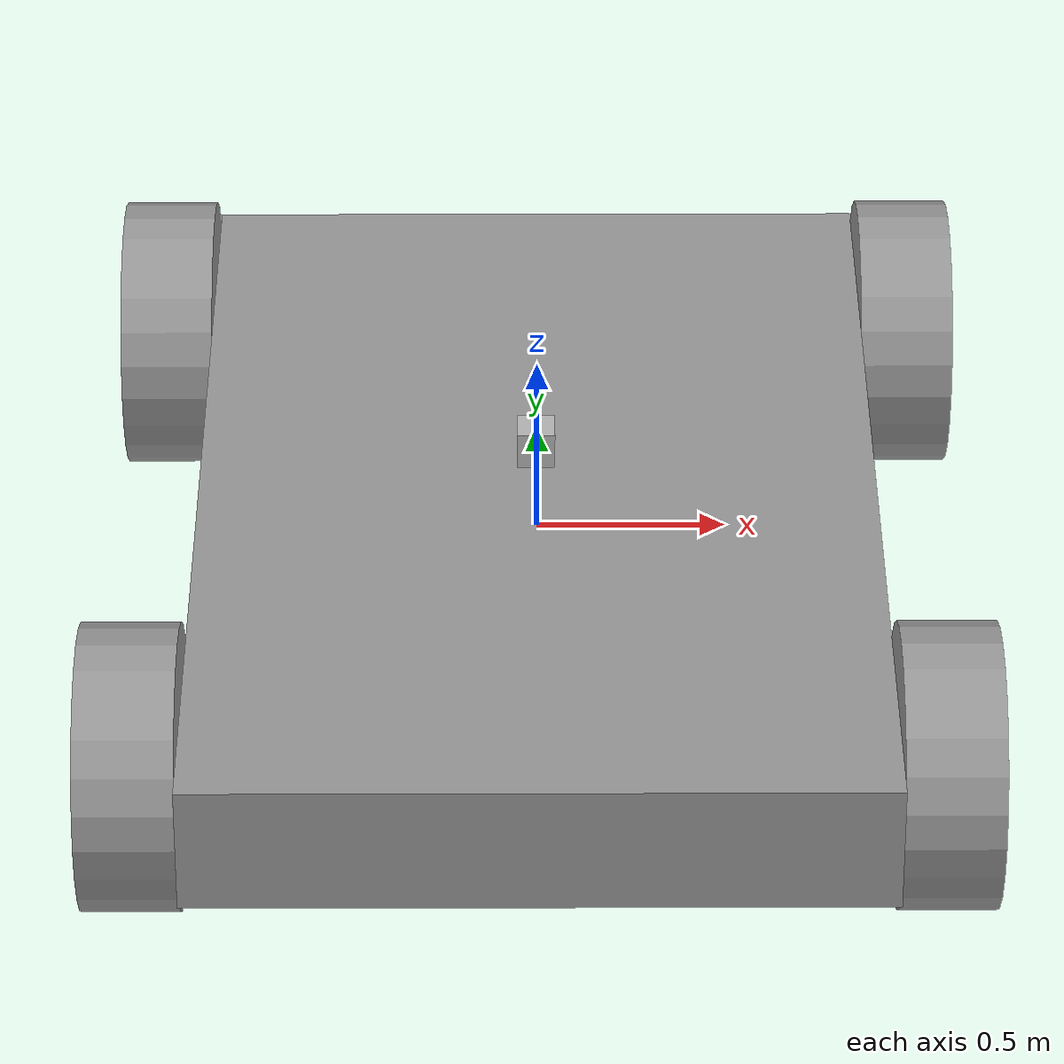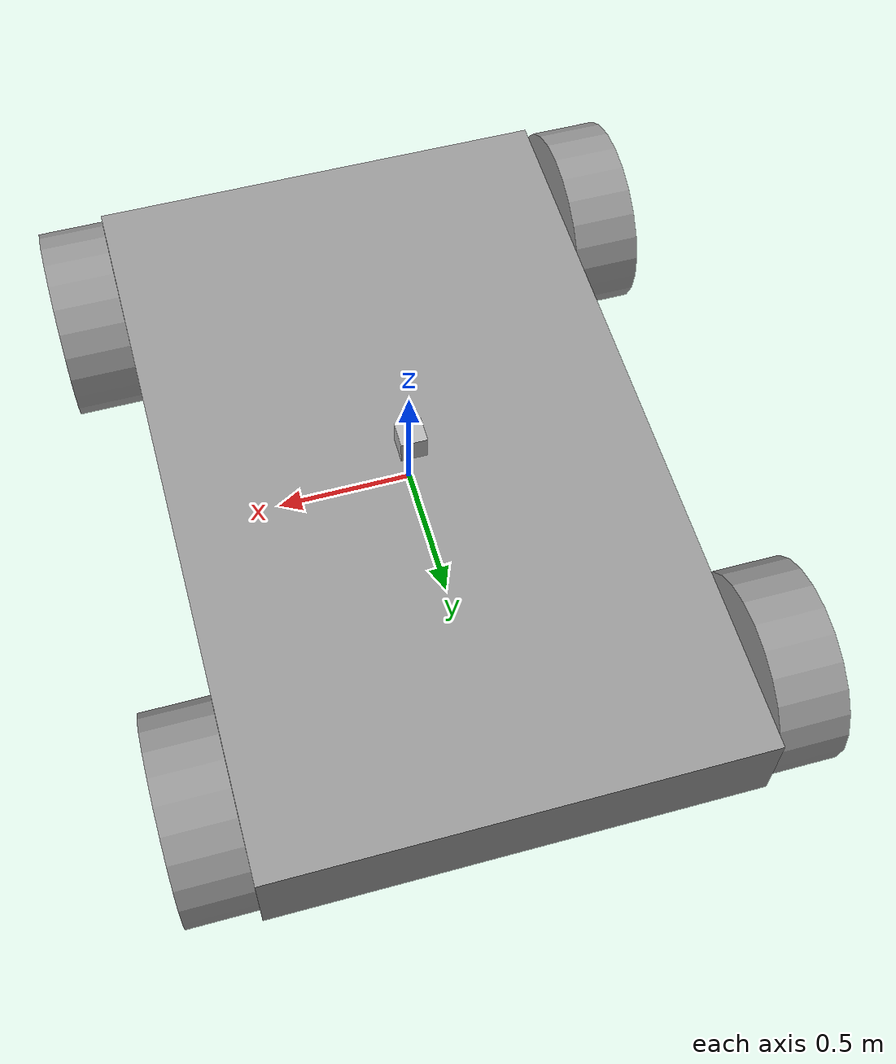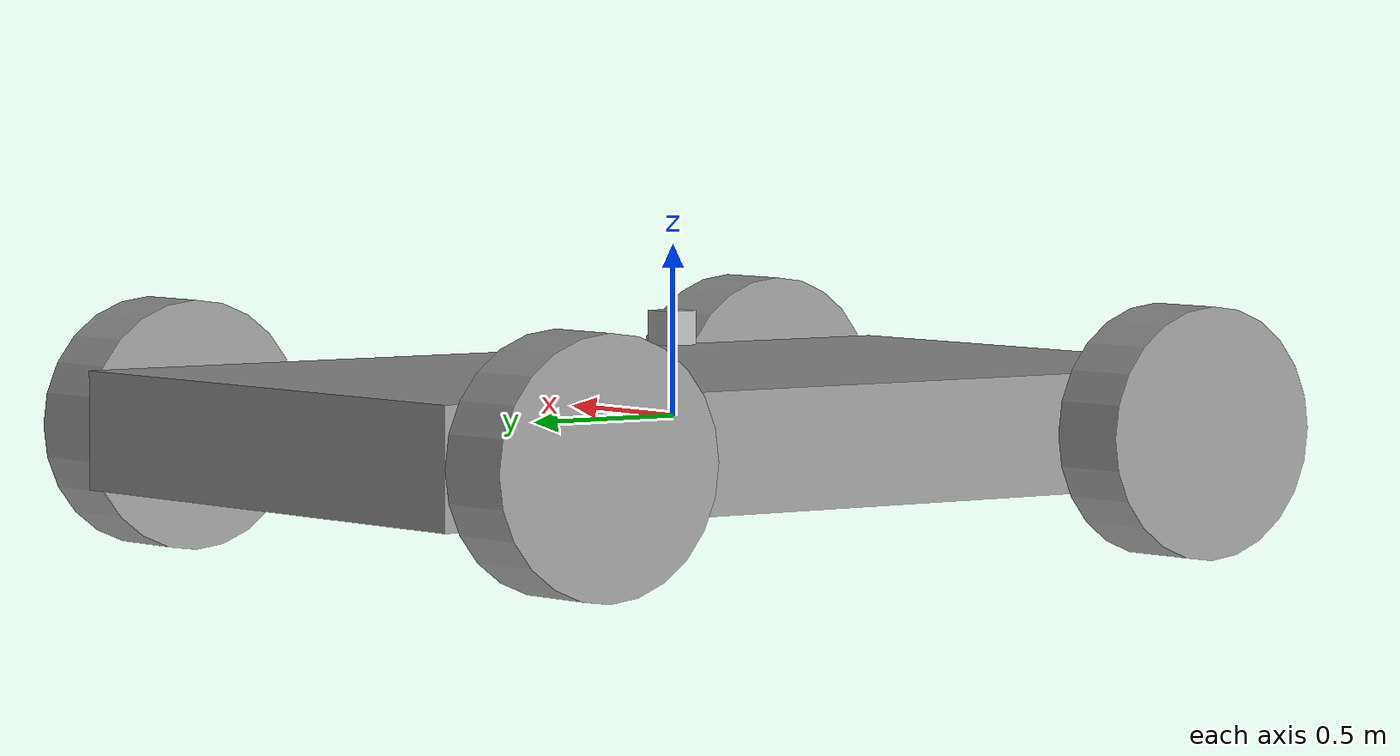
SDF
<?xml version='1.0'?>
<sdf version='1.6'>
  <model name='newmodel1'>
    <link name='link_1'>
      <inertial>
        <mass>0.135764</mass>
        <inertia>
          <ixx>0.00528346</ixx>
          <ixy>0</ixy>
          <ixz>0</ixz>
          <iyy>0.00528346</iyy>
          <iyz>0</iyz>
          <izz>0.00912319</izz>
        </inertia>
        <pose frame=''>0 0 0 0 -0 0</pose>
      </inertial>
      <pose frame=''>-1.02662 -1.07679 -0.032893 2.8e-05 -1.57079 -3.4e-05</pose>
      <self_collide>0</self_collide>
      <enable_wind>0</enable_wind>
      <kinematic>0</kinematic>
      <visual name='visual'>
        <pose frame=''>0 0 0 0 -0 0</pose>
        <geometry>
          <cylinder>
            <radius>0.366603</radius>
            <length>0.252597</length>
          </cylinder>
        </geometry>
        <material>
          <lighting>1</lighting>
          <script>
            <uri>file://media/materials/scripts/gazebo.material</uri>
            <name>Gazebo/Grey</name>
          </script>
          <shader type='pixel'/>
          <emissive>0 0 0 1</emissive>
        </material>
        <transparency>0</transparency>
        <cast_shadows>1</cast_shadows>
      </visual>
      <collision name='collision'>
        <laser_retro>0</laser_retro>
        <max_contacts>10</max_contacts>
        <pose frame=''>0 0 0 0 -0 0</pose>
        <geometry>
          <cylinder>
            <radius>0.366603</radius>
            <length>0.252597</length>
          </cylinder>
        </geometry>
        <surface>
          <friction>
            <ode>
              <mu>1</mu>
              <mu2>1</mu2>
              <fdir1>0 0 0</fdir1>
              <slip1>0</slip1>
              <slip2>0</slip2>
            </ode>
            <torsional>
              <coefficient>1</coefficient>
              <patch_radius>0</patch_radius>
              <surface_radius>0</surface_radius>
              <use_patch_radius>1</use_patch_radius>
              <ode>
                <slip>0</slip>
              </ode>
            </torsional>
          </friction>
          <bounce>
            <restitution_coefficient>0</restitution_coefficient>
            <threshold>1e+06</threshold>
          </bounce>
          <contact>
            <collide_without_contact>0</collide_without_contact>
            <collide_without_contact_bitmask>1</collide_without_contact_bitmask>
            <collide_bitmask>1</collide_bitmask>
            <ode>
              <soft_cfm>0</soft_cfm>
              <soft_erp>0.2</soft_erp>
              <kp>1e+13</kp>
              <kd>1</kd>
              <max_vel>0.01</max_vel>
              <min_depth>0</min_depth>
            </ode>
            <bullet>
              <split_impulse>1</split_impulse>
              <split_impulse_penetration_threshold>-0.01</split_impulse_penetration_threshold>
              <soft_cfm>0</soft_cfm>
              <soft_erp>0.2</soft_erp>
              <kp>1e+13</kp>
              <kd>1</kd>
            </bullet>
          </contact>
        </surface>
      </collision>
    </link>
    <link name='link_1_clone'>
      <inertial>
        <mass>0.135764</mass>
        <inertia>
          <ixx>0.00528346</ixx>
          <ixy>0</ixy>
          <ixz>0</ixz>
          <iyy>0.00528346</iyy>
          <iyz>0</iyz>
          <izz>0.00912319</izz>
        </inertia>
        <pose frame=''>0 0 0 0 -0 0</pose>
      </inertial>
      <pose frame=''>-1.02663 1.074 -0.032893 2.8e-05 -1.57079 -3.4e-05</pose>
      <self_collide>0</self_collide>
      <enable_wind>0</enable_wind>
      <kinematic>0</kinematic>
      <visual name='visual'>
        <pose frame=''>0 0 0 0 -0 0</pose>
        <geometry>
          <cylinder>
            <radius>0.366603</radius>
            <length>0.252597</length>
          </cylinder>
        </geometry>
        <material>
          <lighting>1</lighting>
          <script>
            <uri>file://media/materials/scripts/gazebo.material</uri>
            <name>Gazebo/Grey</name>
          </script>
          <shader type='pixel'/>
          <emissive>0 0 0 1</emissive>
        </material>
        <transparency>0</transparency>
        <cast_shadows>1</cast_shadows>
      </visual>
      <collision name='collision'>
        <laser_retro>0</laser_retro>
        <max_contacts>10</max_contacts>
        <pose frame=''>0 0 0 0 -0 0</pose>
        <geometry>
          <cylinder>
            <radius>0.366603</radius>
            <length>0.252597</length>
          </cylinder>
        </geometry>
        <surface>
          <friction>
            <ode>
              <mu>1</mu>
              <mu2>1</mu2>
              <fdir1>0 0 0</fdir1>
              <slip1>0</slip1>
              <slip2>0</slip2>
            </ode>
            <torsional>
              <coefficient>1</coefficient>
              <patch_radius>0</patch_radius>
              <surface_radius>0</surface_radius>
              <use_patch_radius>1</use_patch_radius>
              <ode>
                <slip>0</slip>
              </ode>
            </torsional>
          </friction>
          <bounce>
            <restitution_coefficient>0</restitution_coefficient>
            <threshold>1e+06</threshold>
          </bounce>
          <contact>
            <collide_without_contact>0</collide_without_contact>
            <collide_without_contact_bitmask>1</collide_without_contact_bitmask>
            <collide_bitmask>1</collide_bitmask>
            <ode>
              <soft_cfm>0</soft_cfm>
              <soft_erp>0.2</soft_erp>
              <kp>1e+13</kp>
              <kd>1</kd>
              <max_vel>0.01</max_vel>
              <min_depth>0</min_depth>
            </ode>
            <bullet>
              <split_impulse>1</split_impulse>
              <split_impulse_penetration_threshold>-0.01</split_impulse_penetration_threshold>
              <soft_cfm>0</soft_cfm>
              <soft_erp>0.2</soft_erp>
              <kp>1e+13</kp>
              <kd>1</kd>
            </bullet>
          </contact>
        </surface>
      </collision>
    </link>
    <link name='link_1_clone_0'>
      <inertial>
        <mass>0.135764</mass>
        <inertia>
          <ixx>0.00528346</ixx>
          <ixy>0</ixy>
          <ixz>0</ixz>
          <iyy>0.00528346</iyy>
          <iyz>0</iyz>
          <izz>0.00912319</izz>
        </inertia>
        <pose frame=''>0 0 0 0 -0 0</pose>
      </inertial>
      <pose frame=''>1.02817 -1.07679 -0.032893 2.8e-05 -1.57079 -3.4e-05</pose>
      <self_collide>0</self_collide>
      <enable_wind>0</enable_wind>
      <kinematic>0</kinematic>
      <visual name='visual'>
        <pose frame=''>0 0 0 0 -0 0</pose>
        <geometry>
          <cylinder>
            <radius>0.366603</radius>
            <length>0.252597</length>
          </cylinder>
        </geometry>
        <material>
          <lighting>1</lighting>
          <script>
            <uri>file://media/materials/scripts/gazebo.material</uri>
            <name>Gazebo/Grey</name>
          </script>
          <shader type='pixel'/>
          <emissive>0 0 0 1</emissive>
        </material>
        <transparency>0</transparency>
        <cast_shadows>1</cast_shadows>
      </visual>
      <collision name='collision'>
        <laser_retro>0</laser_retro>
        <max_contacts>10</max_contacts>
        <pose frame=''>0 0 0 0 -0 0</pose>
        <geometry>
          <cylinder>
            <radius>0.366603</radius>
            <length>0.252597</length>
          </cylinder>
        </geometry>
        <surface>
          <friction>
            <ode>
              <mu>1</mu>
              <mu2>1</mu2>
              <fdir1>0 0 0</fdir1>
              <slip1>0</slip1>
              <slip2>0</slip2>
            </ode>
            <torsional>
              <coefficient>1</coefficient>
              <patch_radius>0</patch_radius>
              <surface_radius>0</surface_radius>
              <use_patch_radius>1</use_patch_radius>
              <ode>
                <slip>0</slip>
              </ode>
            </torsional>
          </friction>
          <bounce>
            <restitution_coefficient>0</restitution_coefficient>
            <threshold>1e+06</threshold>
          </bounce>
          <contact>
            <collide_without_contact>0</collide_without_contact>
            <collide_without_contact_bitmask>1</collide_without_contact_bitmask>
            <collide_bitmask>1</collide_bitmask>
            <ode>
              <soft_cfm>0</soft_cfm>
              <soft_erp>0.2</soft_erp>
              <kp>1e+13</kp>
              <kd>1</kd>
              <max_vel>0.01</max_vel>
              <min_depth>0</min_depth>
            </ode>
            <bullet>
              <split_impulse>1</split_impulse>
              <split_impulse_penetration_threshold>-0.01</split_impulse_penetration_threshold>
              <soft_cfm>0</soft_cfm>
              <soft_erp>0.2</soft_erp>
              <kp>1e+13</kp>
              <kd>1</kd>
            </bullet>
          </contact>
        </surface>
      </collision>
    </link>
    <link name='link_1_clone_1'>
      <inertial>
        <mass>0.135764</mass>
        <inertia>
          <ixx>0.00528346</ixx>
          <ixy>0</ixy>
          <ixz>0</ixz>
          <iyy>0.00528346</iyy>
          <iyz>0</iyz>
          <izz>0.00912319</izz>
        </inertia>
        <pose frame=''>0 0 0 0 -0 0</pose>
      </inertial>
      <pose frame=''>1.02817 1.074 -0.032893 2.8e-05 -1.57079 -3.4e-05</pose>
      <self_collide>0</self_collide>
      <enable_wind>0</enable_wind>
      <kinematic>0</kinematic>
      <visual name='visual'>
        <pose frame=''>0 0 0 0 -0 0</pose>
        <geometry>
          <cylinder>
            <radius>0.366603</radius>
            <length>0.252597</length>
          </cylinder>
        </geometry>
        <material>
          <lighting>1</lighting>
          <script>
            <uri>file://media/materials/scripts/gazebo.material</uri>
            <name>Gazebo/Grey</name>
          </script>
          <shader type='pixel'/>
          <emissive>0 0 0 1</emissive>
        </material>
        <transparency>0</transparency>
        <cast_shadows>1</cast_shadows>
      </visual>
      <collision name='collision'>
        <laser_retro>0</laser_retro>
        <max_contacts>10</max_contacts>
        <pose frame=''>0 0 0 0 -0 0</pose>
        <geometry>
          <cylinder>
            <radius>0.366603</radius>
            <length>0.252597</length>
          </cylinder>
        </geometry>
        <surface>
          <friction>
            <ode>
              <mu>1</mu>
              <mu2>1</mu2>
              <fdir1>0 0 0</fdir1>
              <slip1>0</slip1>
              <slip2>0</slip2>
            </ode>
            <torsional>
              <coefficient>1</coefficient>
              <patch_radius>0</patch_radius>
              <surface_radius>0</surface_radius>
              <use_patch_radius>1</use_patch_radius>
              <ode>
                <slip>0</slip>
              </ode>
            </torsional>
          </friction>
          <bounce>
            <restitution_coefficient>0</restitution_coefficient>
            <threshold>1e+06</threshold>
          </bounce>
          <contact>
            <collide_without_contact>0</collide_without_contact>
            <collide_without_contact_bitmask>1</collide_without_contact_bitmask>
            <collide_bitmask>1</collide_bitmask>
            <ode>
              <soft_cfm>0</soft_cfm>
              <soft_erp>0.2</soft_erp>
              <kp>1e+13</kp>
              <kd>1</kd>
              <max_vel>0.01</max_vel>
              <min_depth>0</min_depth>
            </ode>
            <bullet>
              <split_impulse>1</split_impulse>
              <split_impulse_penetration_threshold>-0.01</split_impulse_penetration_threshold>
              <soft_cfm>0</soft_cfm>
              <soft_erp>0.2</soft_erp>
              <kp>1e+13</kp>
              <kd>1</kd>
            </bullet>
          </contact>
        </surface>
      </collision>
    </link>
    <link name='link_2'>
      <inertial>
        <mass>1.80447</mass>
        <inertia>
          <ixx>1.26883</ixx>
          <ixy>0</ixy>
          <ixz>0</ixz>
          <iyy>0.506509</iyy>
          <iyz>0</iyz>
          <izz>1.7391</izz>
        </inertia>
        <pose frame=''>0 0 0 0 -0 0</pose>
      </inertial>
      <pose frame=''>0.000768 -0.001392 -0.032893 0 -0 0</pose>
      <self_collide>0</self_collide>
      <enable_wind>0</enable_wind>
      <kinematic>0</kinematic>
      <visual name='visual'>
        <pose frame=''>0 0 0 0 -0 0</pose>
        <geometry>
          <box>
            <size>1.80218 2.88399 0.347118</size>
          </box>
        </geometry>
        <material>
          <lighting>1</lighting>
          <script>
            <uri>file://media/materials/scripts/gazebo.material</uri>
            <name>Gazebo/Grey</name>
          </script>
          <shader type='pixel'/>
          <emissive>0 0 0 1</emissive>
        </material>
        <transparency>0</transparency>
        <cast_shadows>1</cast_shadows>
      </visual>
      <collision name='collision'>
        <laser_retro>0</laser_retro>
        <max_contacts>10</max_contacts>
        <pose frame=''>0 0 0 0 -0 0</pose>
        <geometry>
          <box>
            <size>1.80218 2.88399 0.347118</size>
          </box>
        </geometry>
        <surface>
          <friction>
            <ode>
              <mu>1</mu>
              <mu2>1</mu2>
              <fdir1>0 0 0</fdir1>
              <slip1>0</slip1>
              <slip2>0</slip2>
            </ode>
            <torsional>
              <coefficient>1</coefficient>
              <patch_radius>0</patch_radius>
              <surface_radius>0</surface_radius>
              <use_patch_radius>1</use_patch_radius>
              <ode>
                <slip>0</slip>
              </ode>
            </torsional>
          </friction>
          <bounce>
            <restitution_coefficient>0</restitution_coefficient>
            <threshold>1e+06</threshold>
          </bounce>
          <contact>
            <collide_without_contact>0</collide_without_contact>
            <collide_without_contact_bitmask>1</collide_without_contact_bitmask>
            <collide_bitmask>1</collide_bitmask>
            <ode>
              <soft_cfm>0</soft_cfm>
              <soft_erp>0.2</soft_erp>
              <kp>1e+13</kp>
              <kd>1</kd>
              <max_vel>0.01</max_vel>
              <min_depth>0</min_depth>
            </ode>
            <bullet>
              <split_impulse>1</split_impulse>
              <split_impulse_penetration_threshold>-0.01</split_impulse_penetration_threshold>
              <soft_cfm>0</soft_cfm>
              <soft_erp>0.2</soft_erp>
              <kp>1e+13</kp>
              <kd>1</kd>
            </bullet>
          </contact>
        </surface>
      </collision>
    </link>
    <model name='camera'>
      <pose frame=''>-0.003852 0.006958 0.258626 1.5708 -0 0</pose>
      <link name='link'>
        <inertial>
          <mass>0.1</mass>
          <inertia>
            <ixx>0.000166667</ixx>
            <iyy>0.000166667</iyy>
            <izz>0.000166667</izz>
            <ixy>0</ixy>
            <ixz>0</ixz>
            <iyz>0</iyz>
          </inertia>
          <pose frame=''>0 0 0 0 -0 0</pose>
        </inertial>
        <collision name='collision'>
          <geometry>
            <box>
              <size>0.1 0.1 0.1</size>
            </box>
          </geometry>
          <max_contacts>10</max_contacts>
          <surface>
            <contact>
              <ode/>
            </contact>
            <bounce/>
            <friction>
              <torsional>
                <ode/>
              </torsional>
              <ode/>
            </friction>
          </surface>
        </collision>
        <visual name='visual'>
          <geometry>
            <box>
              <size>0.1 0.1 0.1</size>
            </box>
          </geometry>
        </visual>
        <sensor name='camera' type='camera'>
          <camera name='__default__'>
            <horizontal_fov>1.047</horizontal_fov>
            <image>
              <width>320</width>
              <height>240</height>
            </image>
            <clip>
              <near>0.1</near>
              <far>100</far>
            </clip>
          </camera>
          <always_on>1</always_on>
          <update_rate>30</update_rate>
          <visualize>1</visualize>
        </sensor>
        <self_collide>0</self_collide>
        <enable_wind>0</enable_wind>
        <kinematic>0</kinematic>
      </link>
    </model>
    <joint name='link_2_JOINT_1' type='revolute'>
      <parent>link_2</parent>
      <child>link_1</child>
      <pose frame=''>0 0 0 0 -0 0</pose>
      <axis>
        <xyz>0 0 1</xyz>
        <use_parent_model_frame>0</use_parent_model_frame>
        <limit>
          <lower>-1.79769e+308</lower>
          <upper>1.79769e+308</upper>
          <effort>-1</effort>
          <velocity>-1</velocity>
        </limit>
        <dynamics>
          <spring_reference>0</spring_reference>
          <spring_stiffness>0</spring_stiffness>
          <damping>0</damping>
          <friction>0</friction>
        </dynamics>
      </axis>
      <physics>
        <ode>
          <limit>
            <cfm>0</cfm>
            <erp>0.2</erp>
          </limit>
          <suspension>
            <cfm>0</cfm>
            <erp>0.2</erp>
          </suspension>
        </ode>
      </physics>
    </joint>
    <joint name='link_2_JOINT_2' type='revolute'>
      <parent>link_2</parent>
      <child>link_1_clone</child>
      <pose frame=''>0 0 0 0 -0 0</pose>
      <axis>
        <xyz>0.02 0 1</xyz>
        <use_parent_model_frame>0</use_parent_model_frame>
        <limit>
          <lower>-1.79769e+308</lower>
          <upper>1.79769e+308</upper>
          <effort>-1</effort>
          <velocity>-1</velocity>
        </limit>
        <dynamics>
          <spring_reference>0</spring_reference>
          <spring_stiffness>0</spring_stiffness>
          <damping>0</damping>
          <friction>0</friction>
        </dynamics>
      </axis>
      <physics>
        <ode>
          <limit>
            <cfm>0</cfm>
            <erp>0.2</erp>
          </limit>
          <suspension>
            <cfm>0</cfm>
            <erp>0.2</erp>
          </suspension>
        </ode>
      </physics>
    </joint>
    <joint name='link_2_JOINT_3' type='revolute'>
      <parent>link_2</parent>
      <child>link_1_clone_0</child>
      <pose frame=''>0 0 0 0 -0 0</pose>
      <axis>
        <xyz>-0 -0 -1</xyz>
        <use_parent_model_frame>0</use_parent_model_frame>
        <limit>
          <lower>-1.79769e+308</lower>
          <upper>1.79769e+308</upper>
          <effort>-1</effort>
          <velocity>-1</velocity>
        </limit>
        <dynamics>
          <spring_reference>0</spring_reference>
          <spring_stiffness>0</spring_stiffness>
          <damping>0</damping>
          <friction>0</friction>
        </dynamics>
      </axis>
      <physics>
        <ode>
          <limit>
            <cfm>0</cfm>
            <erp>0.2</erp>
          </limit>
          <suspension>
            <cfm>0</cfm>
            <erp>0.2</erp>
          </suspension>
        </ode>
      </physics>
    </joint>
    <joint name='link_2_JOINT_5' type='revolute'>
      <parent>link_2</parent>
      <child>link_1_clone_1</child>
      <pose frame=''>0 0 0 0 -0 0</pose>
      <axis>
        <xyz>-0 -0 -1</xyz>
        <use_parent_model_frame>0</use_parent_model_frame>
        <limit>
          <lower>-1.79769e+308</lower>
          <upper>1.79769e+308</upper>
          <effort>-1</effort>
          <velocity>-1</velocity>
        </limit>
        <dynamics>
          <spring_reference>0</spring_reference>
          <spring_stiffness>0</spring_stiffness>
          <damping>0</damping>
          <friction>0</friction>
        </dynamics>
      </axis>
      <physics>
        <ode>
          <limit>
            <cfm>0</cfm>
            <erp>0.2</erp>
          </limit>
          <suspension>
            <cfm>0</cfm>
            <erp>0.2</erp>
          </suspension>
        </ode>
      </physics>
    </joint>
    <joint name='link_2_JOINT_6' type='fixed'>
      <parent>link_2</parent>
      <child>camera::link</child>
      <pose frame=''>0 0 0 0 -0 0</pose>
      <physics>
        <ode>
          <limit>
            <cfm>0</cfm>
            <erp>0.2</erp>
          </limit>
          <suspension>
            <cfm>0</cfm>
            <erp>0.2</erp>
          </suspension>
        </ode>
      </physics>
    </joint>
    <static>0</static>
    <allow_auto_disable>1</allow_auto_disable>
  </model>
</sdf>
